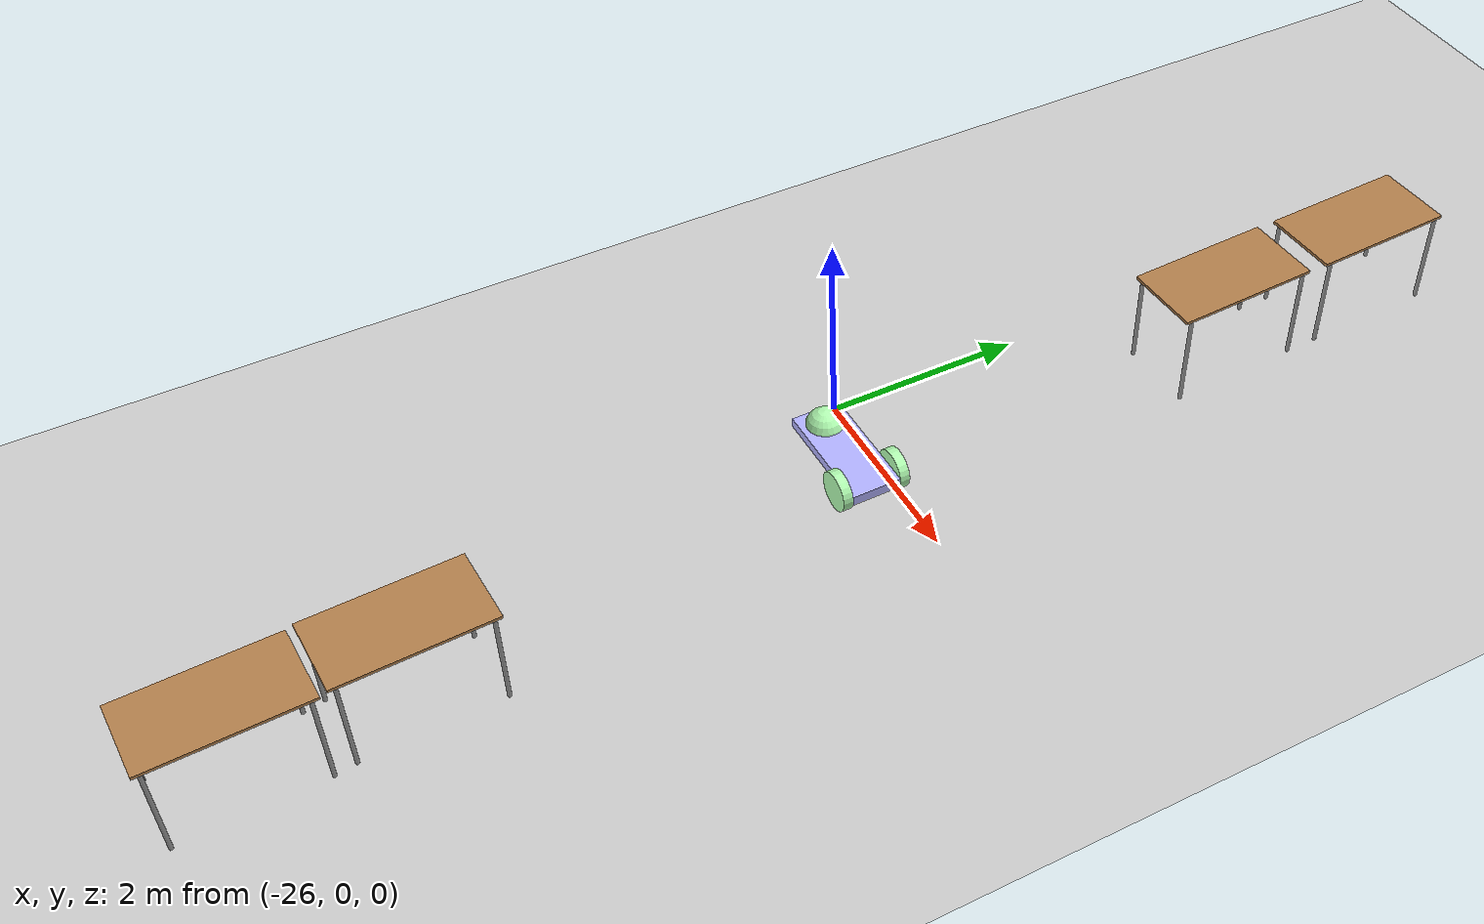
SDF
<sdf version="1.6">
 <world name="default">
  <model name="ground_plane">
   <static>1</static>
   <link name="link">
    <collision name="collision">
     <geometry><plane><normal>0 0 1</normal><size>100 100</size></plane></geometry>
     <surface><friction><ode><mu>100</mu><mu2>50</mu2></ode></friction></surface>
    </collision>
    <visual name="visual">
     <cast_shadows>0</cast_shadows>
     <geometry><plane><normal>0 0 1</normal><size>100 100</size></plane></geometry>
     <material>
      <script><uri>file://media/materials/scripts/gazebo.material</uri><name>Gazebo/Grey</name></script>
     </material>
    </visual>
   </link>
  </model>
  <model name="table_clone">
   <static>1</static>
   <link name="link">
    <collision name="surface">
     <pose>0 0 1 0 -0 0</pose>
     <geometry><box><size>1.5 0.8 0.03</size></box></geometry>
     <surface><friction><ode><mu>0.6</mu><mu2>0.6</mu2></ode></friction></surface>
    </collision>
    <visual name="visual1">
     <pose>0 0 1 0 -0 0</pose>
     <geometry><box><size>1.5 0.8 0.03</size></box></geometry>
     <material>
      <script><uri>file://media/materials/scripts/gazebo.material</uri><name>Gazebo/Wood</name></script>
     </material>
    </visual>
    <collision name="front_left_leg">
     <pose>0.68 0.38 0.5 0 -0 0</pose>
     <geometry><cylinder><radius>0.02</radius><length>1</length></cylinder></geometry>
    </collision>
    <visual name="front_left_leg">
     <pose>0.68 0.38 0.5 0 -0 0</pose>
     <geometry><cylinder><radius>0.02</radius><length>1</length></cylinder></geometry>
     <material>
      <script><uri>file://media/materials/scripts/gazebo.material</uri><name>Gazebo/Grey</name></script>
     </material>
    </visual>
    <collision name="front_right_leg">
     <pose>0.68 -0.38 0.5 0 -0 0</pose>
     <geometry><cylinder><radius>0.02</radius><length>1</length></cylinder></geometry>
    </collision>
    <visual name="front_right_leg">
     <pose>0.68 -0.38 0.5 0 -0 0</pose>
     <geometry><cylinder><radius>0.02</radius><length>1</length></cylinder></geometry>
     <material>
      <script><uri>file://media/materials/scripts/gazebo.material</uri><name>Gazebo/Grey</name></script>
     </material>
    </visual>
    <collision name="back_right_leg">
     <pose>-0.68 -0.38 0.5 0 -0 0</pose>
     <geometry><cylinder><radius>0.02</radius><length>1</length></cylinder></geometry>
    </collision>
    <visual name="back_right_leg">
     <pose>-0.68 -0.38 0.5 0 -0 0</pose>
     <geometry><cylinder><radius>0.02</radius><length>1</length></cylinder></geometry>
     <material>
      <script><uri>file://media/materials/scripts/gazebo.material</uri><name>Gazebo/Grey</name></script>
     </material>
    </visual>
    <collision name="back_left_leg">
     <pose>-0.68 0.38 0.5 0 -0 0</pose>
     <geometry><cylinder><radius>0.02</radius><length>1</length></cylinder></geometry>
    </collision>
    <visual name="back_left_leg">
     <pose>-0.68 0.38 0.5 0 -0 0</pose>
     <geometry><cylinder><radius>0.02</radius><length>1</length></cylinder></geometry>
     <material>
      <script><uri>file://media/materials/scripts/gazebo.material</uri><name>Gazebo/Grey</name></script>
     </material>
    </visual>
   </link>
   <pose>-24.993 5.4295 0 0 0 -1.52875</pose>
  </model>
  <model name="table_clone_0">
   <static>1</static>
   <link name="link">
    <collision name="surface">
     <pose>0 0 1 0 -0 0</pose>
     <geometry><box><size>1.5 0.8 0.03</size></box></geometry>
     <surface><friction><ode><mu>0.6</mu><mu2>0.6</mu2></ode></friction></surface>
    </collision>
    <visual name="visual1">
     <pose>0 0 1 0 -0 0</pose>
     <geometry><box><size>1.5 0.8 0.03</size></box></geometry>
     <material>
      <script><uri>file://media/materials/scripts/gazebo.material</uri><name>Gazebo/Wood</name></script>
     </material>
    </visual>
    <collision name="front_left_leg">
     <pose>0.68 0.38 0.5 0 -0 0</pose>
     <geometry><cylinder><radius>0.02</radius><length>1</length></cylinder></geometry>
    </collision>
    <visual name="front_left_leg">
     <pose>0.68 0.38 0.5 0 -0 0</pose>
     <geometry><cylinder><radius>0.02</radius><length>1</length></cylinder></geometry>
     <material>
      <script><uri>file://media/materials/scripts/gazebo.material</uri><name>Gazebo/Grey</name></script>
     </material>
    </visual>
    <collision name="front_right_leg">
     <pose>0.68 -0.38 0.5 0 -0 0</pose>
     <geometry><cylinder><radius>0.02</radius><length>1</length></cylinder></geometry>
    </collision>
    <visual name="front_right_leg">
     <pose>0.68 -0.38 0.5 0 -0 0</pose>
     <geometry><cylinder><radius>0.02</radius><length>1</length></cylinder></geometry>
     <material>
      <script><uri>file://media/materials/scripts/gazebo.material</uri><name>Gazebo/Grey</name></script>
     </material>
    </visual>
    <collision name="back_right_leg">
     <pose>-0.68 -0.38 0.5 0 -0 0</pose>
     <geometry><cylinder><radius>0.02</radius><length>1</length></cylinder></geometry>
    </collision>
    <visual name="back_right_leg">
     <pose>-0.68 -0.38 0.5 0 -0 0</pose>
     <geometry><cylinder><radius>0.02</radius><length>1</length></cylinder></geometry>
     <material>
      <script><uri>file://media/materials/scripts/gazebo.material</uri><name>Gazebo/Grey</name></script>
     </material>
    </visual>
    <collision name="back_left_leg">
     <pose>-0.68 0.38 0.5 0 -0 0</pose>
     <geometry><cylinder><radius>0.02</radius><length>1</length></cylinder></geometry>
    </collision>
    <visual name="back_left_leg">
     <pose>-0.68 0.38 0.5 0 -0 0</pose>
     <geometry><cylinder><radius>0.02</radius><length>1</length></cylinder></geometry>
     <material>
      <script><uri>file://media/materials/scripts/gazebo.material</uri><name>Gazebo/Grey</name></script>
     </material>
    </visual>
   </link>
   <pose>-24.9317 3.72719 0 0 0 -1.52875</pose>
  </model>
  <model name="table_clone_5">
   <static>1</static>
   <link name="link">
    <collision name="surface">
     <pose>0 0 1 0 -0 0</pose>
     <geometry><box><size>1.5 0.8 0.03</size></box></geometry>
     <surface><friction><ode><mu>0.6</mu><mu2>0.6</mu2></ode></friction></surface>
    </collision>
    <visual name="visual1">
     <pose>0 0 1 0 -0 0</pose>
     <geometry><box><size>1.5 0.8 0.03</size></box></geometry>
     <material>
      <script><uri>file://media/materials/scripts/gazebo.material</uri><name>Gazebo/Wood</name></script>
     </material>
    </visual>
    <collision name="front_left_leg">
     <pose>0.68 0.38 0.5 0 -0 0</pose>
     <geometry><cylinder><radius>0.02</radius><length>1</length></cylinder></geometry>
    </collision>
    <visual name="front_left_leg">
     <pose>0.68 0.38 0.5 0 -0 0</pose>
     <geometry><cylinder><radius>0.02</radius><length>1</length></cylinder></geometry>
     <material>
      <script><uri>file://media/materials/scripts/gazebo.material</uri><name>Gazebo/Grey</name></script>
     </material>
    </visual>
    <collision name="front_right_leg">
     <pose>0.68 -0.38 0.5 0 -0 0</pose>
     <geometry><cylinder><radius>0.02</radius><length>1</length></cylinder></geometry>
    </collision>
    <visual name="front_right_leg">
     <pose>0.68 -0.38 0.5 0 -0 0</pose>
     <geometry><cylinder><radius>0.02</radius><length>1</length></cylinder></geometry>
     <material>
      <script><uri>file://media/materials/scripts/gazebo.material</uri><name>Gazebo/Grey</name></script>
     </material>
    </visual>
    <collision name="back_right_leg">
     <pose>-0.68 -0.38 0.5 0 -0 0</pose>
     <geometry><cylinder><radius>0.02</radius><length>1</length></cylinder></geometry>
    </collision>
    <visual name="back_right_leg">
     <pose>-0.68 -0.38 0.5 0 -0 0</pose>
     <geometry><cylinder><radius>0.02</radius><length>1</length></cylinder></geometry>
     <material>
      <script><uri>file://media/materials/scripts/gazebo.material</uri><name>Gazebo/Grey</name></script>
     </material>
    </visual>
    <collision name="back_left_leg">
     <pose>-0.68 0.38 0.5 0 -0 0</pose>
     <geometry><cylinder><radius>0.02</radius><length>1</length></cylinder></geometry>
    </collision>
    <visual name="back_left_leg">
     <pose>-0.68 0.38 0.5 0 -0 0</pose>
     <geometry><cylinder><radius>0.02</radius><length>1</length></cylinder></geometry>
     <material>
      <script><uri>file://media/materials/scripts/gazebo.material</uri><name>Gazebo/Grey</name></script>
     </material>
    </visual>
   </link>
   <pose>-24.459 -6.34416 0 0 0 -1.52875</pose>
  </model>
  <model name="table_clone_3_clone_1">
   <static>1</static>
   <link name="link">
    <collision name="surface">
     <pose>0 0 1 0 -0 0</pose>
     <geometry><box><size>1.5 0.8 0.03</size></box></geometry>
     <surface><friction><ode><mu>0.6</mu><mu2>0.6</mu2></ode></friction></surface>
    </collision>
    <visual name="visual1">
     <pose>0 0 1 0 -0 0</pose>
     <geometry><box><size>1.5 0.8 0.03</size></box></geometry>
     <material>
      <script><uri>file://media/materials/scripts/gazebo.material</uri><name>Gazebo/Wood</name></script>
     </material>
    </visual>
    <collision name="front_left_leg">
     <pose>0.68 0.38 0.5 0 -0 0</pose>
     <geometry><cylinder><radius>0.02</radius><length>1</length></cylinder></geometry>
    </collision>
    <visual name="front_left_leg">
     <pose>0.68 0.38 0.5 0 -0 0</pose>
     <geometry><cylinder><radius>0.02</radius><length>1</length></cylinder></geometry>
     <material>
      <script><uri>file://media/materials/scripts/gazebo.material</uri><name>Gazebo/Grey</name></script>
     </material>
    </visual>
    <collision name="front_right_leg">
     <pose>0.68 -0.38 0.5 0 -0 0</pose>
     <geometry><cylinder><radius>0.02</radius><length>1</length></cylinder></geometry>
    </collision>
    <visual name="front_right_leg">
     <pose>0.68 -0.38 0.5 0 -0 0</pose>
     <geometry><cylinder><radius>0.02</radius><length>1</length></cylinder></geometry>
     <material>
      <script><uri>file://media/materials/scripts/gazebo.material</uri><name>Gazebo/Grey</name></script>
     </material>
    </visual>
    <collision name="back_right_leg">
     <pose>-0.68 -0.38 0.5 0 -0 0</pose>
     <geometry><cylinder><radius>0.02</radius><length>1</length></cylinder></geometry>
    </collision>
    <visual name="back_right_leg">
     <pose>-0.68 -0.38 0.5 0 -0 0</pose>
     <geometry><cylinder><radius>0.02</radius><length>1</length></cylinder></geometry>
     <material>
      <script><uri>file://media/materials/scripts/gazebo.material</uri><name>Gazebo/Grey</name></script>
     </material>
    </visual>
    <collision name="back_left_leg">
     <pose>-0.68 0.38 0.5 0 -0 0</pose>
     <geometry><cylinder><radius>0.02</radius><length>1</length></cylinder></geometry>
    </collision>
    <visual name="back_left_leg">
     <pose>-0.68 0.38 0.5 0 -0 0</pose>
     <geometry><cylinder><radius>0.02</radius><length>1</length></cylinder></geometry>
     <material>
      <script><uri>file://media/materials/scripts/gazebo.material</uri><name>Gazebo/Grey</name></script>
     </material>
    </visual>
   </link>
   <pose>-24.5553 -4.77951 0 0 0 -1.52875</pose>
  </model>
  <model name="custom_robot">
   <link name="link_0">
    <pose>-0.1 0 0 0 -0 0</pose>
    <inertial>
     <mass>1</mass>
     <inertia>
      <ixx>0.166667</ixx>
      <ixy>0</ixy>
      <ixz>0</ixz>
      <iyy>0.166667</iyy>
      <iyz>0</iyz>
      <izz>0.166667</izz>
     </inertia>
    </inertial>
    <visual name="visual">
     <geometry><box><size>1.2 0.5 0.1</size></box></geometry>
     <material>
      <lighting>1</lighting>
      <script><uri>file://media/materials/scripts/gazebo.material</uri><name>Gazebo/Grey</name></script>
      <shader type="pixel"><normal_map>__default__</normal_map></shader>
      <ambient>0.3 0.3 1 1</ambient>
      <diffuse>0.7 0.7 1 1</diffuse>
      <specular>0.01 0.01 1 1</specular>
      <emissive>0 0 0 1</emissive>
     </material>
    </visual>
    <collision name="collision">
     <geometry><box><size>1.2 0.5 0.1</size></box></geometry>
     <surface>
      <friction>
       <ode><mu>1</mu><mu2>1</mu2><fdir1>0 0 0</fdir1><slip1>0</slip1><slip2>0</slip2></ode>
       <torsional>
        <coefficient>1</coefficient>
        <patch_radius>0</patch_radius>
        <surface_radius>0</surface_radius>
        <use_patch_radius>1</use_patch_radius>
        <ode><slip>0</slip></ode>
       </torsional>
      </friction>
      <bounce><restitution_coefficient>0</restitution_coefficient><threshold>1e+06</threshold></bounce>
      <contact>
       <collide_without_contact>0</collide_without_contact>
       <collide_without_contact_bitmask>1</collide_without_contact_bitmask>
       <collide_bitmask>1</collide_bitmask>
       <ode>
        <soft_cfm>0</soft_cfm>
        <soft_erp>0.2</soft_erp>
        <kp>1e+13</kp>
        <kd>1</kd>
        <max_vel>0.01</max_vel>
        <min_depth>0</min_depth>
       </ode>
       <bullet>
        <split_impulse>1</split_impulse>
        <split_impulse_penetration_threshold>-0.01</split_impulse_penetration_threshold>
        <soft_cfm>0</soft_cfm>
        <soft_erp>0.2</soft_erp>
        <kp>1e+13</kp>
        <kd>1</kd>
       </bullet>
      </contact>
     </surface>
    </collision>
   </link>
   <link name="link_1">
    <pose>0.3 -0.300019 0 1.5707 -0 0</pose>
    <inertial>
     <mass>1</mass>
     <inertia><ixx>0.145833</ixx><ixy>0</ixy><ixz>0</ixz><iyy>0.145833</iyy><iyz>0</iyz><izz>0.125</izz></inertia>
    </inertial>
    <visual name="visual">
     <geometry><cylinder><radius>0.2</radius><length>0.1</length></cylinder></geometry>
     <material>
      <lighting>1</lighting>
      <script><uri>file://media/materials/scripts/gazebo.material</uri><name>Gazebo/Grey</name></script>
      <shader type="pixel"><normal_map>__default__</normal_map></shader>
      <ambient>0.3 1 0.3 1</ambient>
      <diffuse>0.7 1 0.7 1</diffuse>
      <specular>0.01 1 0.01 1</specular>
      <emissive>0 0 0 1</emissive>
     </material>
    </visual>
    <collision name="collision">
     <geometry><cylinder><radius>0.2</radius><length>0.1</length></cylinder></geometry>
     <surface>
      <friction>
       <ode><mu>1</mu><mu2>1</mu2><fdir1>0 0 0</fdir1><slip1>0</slip1><slip2>0</slip2></ode>
       <torsional>
        <coefficient>1</coefficient>
        <patch_radius>0</patch_radius>
        <surface_radius>0</surface_radius>
        <use_patch_radius>1</use_patch_radius>
        <ode><slip>0</slip></ode>
       </torsional>
      </friction>
      <bounce><restitution_coefficient>0</restitution_coefficient><threshold>1e+06</threshold></bounce>
      <contact>
       <collide_without_contact>0</collide_without_contact>
       <collide_without_contact_bitmask>1</collide_without_contact_bitmask>
       <collide_bitmask>1</collide_bitmask>
       <ode>
        <soft_cfm>0</soft_cfm>
        <soft_erp>0.2</soft_erp>
        <kp>1e+13</kp>
        <kd>1</kd>
        <max_vel>0.01</max_vel>
        <min_depth>0</min_depth>
       </ode>
       <bullet>
        <split_impulse>1</split_impulse>
        <split_impulse_penetration_threshold>-0.01</split_impulse_penetration_threshold>
        <soft_cfm>0</soft_cfm>
        <soft_erp>0.2</soft_erp>
        <kp>1e+13</kp>
        <kd>1</kd>
       </bullet>
      </contact>
     </surface>
    </collision>
   </link>
   <link name="link_1_clone">
    <pose>0.3 0.300019 0 1.5707 -0 0</pose>
    <inertial>
     <mass>1</mass>
     <inertia><ixx>0.145833</ixx><ixy>0</ixy><ixz>0</ixz><iyy>0.145833</iyy><iyz>0</iyz><izz>0.125</izz></inertia>
    </inertial>
    <visual name="visual">
     <geometry><cylinder><radius>0.2</radius><length>0.1</length></cylinder></geometry>
     <material>
      <lighting>1</lighting>
      <script><uri>file://media/materials/scripts/gazebo.material</uri><name>Gazebo/Grey</name></script>
      <shader type="pixel"><normal_map>__default__</normal_map></shader>
      <ambient>0.3 1 0.3 1</ambient>
      <diffuse>0.7 1 0.7 1</diffuse>
      <specular>0.01 1 0.01 1</specular>
      <emissive>0 0 0 1</emissive>
     </material>
    </visual>
    <collision name="collision">
     <geometry><cylinder><radius>0.2</radius><length>0.1</length></cylinder></geometry>
     <surface>
      <friction>
       <ode><mu>1</mu><mu2>1</mu2><fdir1>0 0 0</fdir1><slip1>0</slip1><slip2>0</slip2></ode>
       <torsional>
        <coefficient>1</coefficient>
        <patch_radius>0</patch_radius>
        <surface_radius>0</surface_radius>
        <use_patch_radius>1</use_patch_radius>
        <ode><slip>0</slip></ode>
       </torsional>
      </friction>
      <bounce><restitution_coefficient>0</restitution_coefficient><threshold>1e+06</threshold></bounce>
      <contact>
       <collide_without_contact>0</collide_without_contact>
       <collide_without_contact_bitmask>1</collide_without_contact_bitmask>
       <collide_bitmask>1</collide_bitmask>
       <ode>
        <soft_cfm>0</soft_cfm>
        <soft_erp>0.2</soft_erp>
        <kp>1e+13</kp>
        <kd>1</kd>
        <max_vel>0.01</max_vel>
        <min_depth>0</min_depth>
       </ode>
       <bullet>
        <split_impulse>1</split_impulse>
        <split_impulse_penetration_threshold>-0.01</split_impulse_penetration_threshold>
        <soft_cfm>0</soft_cfm>
        <soft_erp>0.2</soft_erp>
        <kp>1e+13</kp>
        <kd>1</kd>
       </bullet>
      </contact>
     </surface>
    </collision>
   </link>
   <link name="link_2">
    <pose>-0.5 0 0 0 -0 0</pose>
    <inertial>
     <mass>1</mass>
     <inertia><ixx>0.1</ixx><ixy>0</ixy><ixz>0</ixz><iyy>0.1</iyy><iyz>0</iyz><izz>0.1</izz></inertia>
    </inertial>
    <visual name="visual">
     <geometry><sphere><radius>0.2</radius></sphere></geometry>
     <material>
      <lighting>1</lighting>
      <script><uri>file://media/materials/scripts/gazebo.material</uri><name>Gazebo/Grey</name></script>
      <shader type="pixel"><normal_map>__default__</normal_map></shader>
      <ambient>0.3 1 0.3 1</ambient>
      <diffuse>0.7 1 0.7 1</diffuse>
      <specular>0.01 1 0.01 1</specular>
      <emissive>0 0 0 1</emissive>
     </material>
    </visual>
    <collision name="collision">
     <geometry><sphere><radius>0.2</radius></sphere></geometry>
     <surface>
      <friction>
       <ode><mu>1</mu><mu2>1</mu2><fdir1>0 0 0</fdir1><slip1>0</slip1><slip2>0</slip2></ode>
       <torsional>
        <coefficient>1</coefficient>
        <patch_radius>0</patch_radius>
        <surface_radius>0</surface_radius>
        <use_patch_radius>1</use_patch_radius>
        <ode><slip>0</slip></ode>
       </torsional>
      </friction>
      <bounce><restitution_coefficient>0</restitution_coefficient><threshold>1e+06</threshold></bounce>
      <contact>
       <collide_without_contact>0</collide_without_contact>
       <collide_without_contact_bitmask>1</collide_without_contact_bitmask>
       <collide_bitmask>1</collide_bitmask>
       <ode>
        <soft_cfm>0</soft_cfm>
        <soft_erp>0.2</soft_erp>
        <kp>1e+13</kp>
        <kd>1</kd>
        <max_vel>0.01</max_vel>
        <min_depth>0</min_depth>
       </ode>
       <bullet>
        <split_impulse>1</split_impulse>
        <split_impulse_penetration_threshold>-0.01</split_impulse_penetration_threshold>
        <soft_cfm>0</soft_cfm>
        <soft_erp>0.2</soft_erp>
        <kp>1e+13</kp>
        <kd>1</kd>
       </bullet>
      </contact>
     </surface>
    </collision>
   </link>
   <joint name="link_0_JOINT_3" type="ball">
    <parent>link_0</parent>
    <child>link_2</child>
    <physics>
     <ode><limit><cfm>0</cfm><erp>0.2</erp></limit><suspension><cfm>0</cfm><erp>0.2</erp></suspension></ode>
    </physics>
   </joint>
   <joint name="link_0_JOINT_4" type="revolute">
    <parent>link_0</parent>
    <child>link_1</child>
    <axis>
     <xyz>1 0 0</xyz>
     <use_parent_model_frame>0</use_parent_model_frame>
     <limit>
      <lower>-1.79769e+308</lower>
      <upper>1.79769e+308</upper>
      <effort>-1</effort>
      <velocity>-1</velocity>
     </limit>
     <dynamics>
      <spring_reference>0</spring_reference>
      <spring_stiffness>0</spring_stiffness>
      <damping>0</damping>
     </dynamics>
    </axis>
    <physics>
     <ode><limit><cfm>0</cfm><erp>0.2</erp></limit><suspension><cfm>0</cfm><erp>0.2</erp></suspension></ode>
    </physics>
   </joint>
   <joint name="link_0_JOINT_5" type="revolute">
    <parent>link_0</parent>
    <child>link_1_clone</child>
    <axis>
     <xyz>1 0 0</xyz>
     <use_parent_model_frame>0</use_parent_model_frame>
     <limit>
      <lower>-1.79769e+308</lower>
      <upper>1.79769e+308</upper>
      <effort>-1</effort>
      <velocity>-1</velocity>
     </limit>
     <dynamics>
      <spring_reference>0</spring_reference>
      <spring_stiffness>0</spring_stiffness>
      <damping>0</damping>
     </dynamics>
    </axis>
    <physics>
     <ode><limit><cfm>0</cfm><erp>0.2</erp></limit><suspension><cfm>0</cfm><erp>0.2</erp></suspension></ode>
    </physics>
   </joint>
   <static>0</static>
   <pose>-25.1447 -0.279164 0.199999 -3e-06 2e-06 0.009257</pose>
  </model>
 </world>
</sdf>
